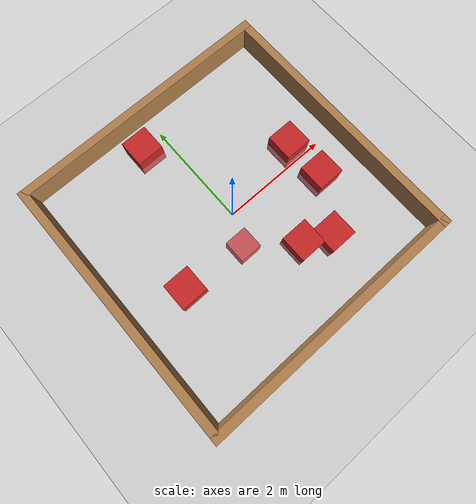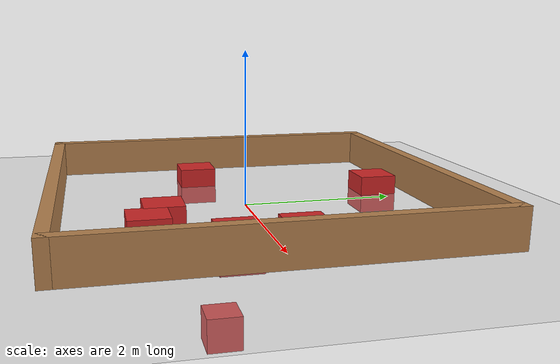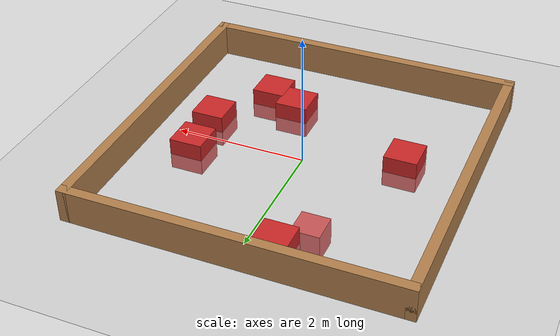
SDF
<sdf version="1.7">
 <world name="default">
  <model name="ground_plane">
   <static>1</static>
   <link name="link">
    <collision name="collision">
     <geometry><plane><normal>0 0 1</normal><size>100 100</size></plane></geometry>
     <surface><friction><ode><mu>100</mu><mu2>50</mu2></ode></friction></surface>
    </collision>
    <visual name="visual">
     <cast_shadows>0</cast_shadows>
     <geometry><plane><normal>0 0 1</normal><size>100 100</size></plane></geometry>
     <material>
      <script><uri>file://media/materials/scripts/gazebo.material</uri><name>Gazebo/Grey</name></script>
     </material>
    </visual>
   </link>
  </model>
  <light name="sun" type="directional">
   <pose>0 0 10 0 -0 0</pose>
   <diffuse>0.8 0.8 0.8 1</diffuse>
   <specular>0.2 0.2 0.2 1</specular>
   <attenuation>
    <range>1000</range>
    <constant>0.9</constant>
    <linear>0.01</linear>
    <quadratic>0.001</quadratic>
   </attenuation>
   <direction>-0.5 0.1 -0.9</direction>
   <spot><inner_angle>0</inner_angle><outer_angle>0</outer_angle><falloff>0</falloff></spot>
  </light>
  <scene><shadows>0</shadows><ambient>0.4 0.4 0.4 1</ambient><background>0.7 0.7 0.7 1</background></scene>
  <physics type="ode">
   <real_time_update_rate>1000</real_time_update_rate>
   <max_step_size>0.001</max_step_size>
   <real_time_factor>1</real_time_factor>
   <ode>
    <solver>
     <type>quick</type>
     <iters>150</iters>
     <precon_iters>0</precon_iters>
     <sor>1.4</sor>
     <use_dynamic_moi_rescaling>1</use_dynamic_moi_rescaling>
    </solver>
    <constraints>
     <cfm>1e-05</cfm>
     <erp>0.2</erp>
     <contact_max_correcting_vel>2000</contact_max_correcting_vel>
     <contact_surface_layer>0.01</contact_surface_layer>
    </constraints>
   </ode>
  </physics>
  <model name="turtlebot3_dqn_world">
   <static>1</static>
   <frame name="turtlebot3_square::__model__" attached_to="turtlebot3_square::Wall_1">
    <pose relative_to="__model__">0 0 0 0 -0 0</pose>
   </frame>
   <link name="turtlebot3_square::Wall_1">
    <collision name="Wall_1_Collision">
     <geometry><box><size>5 0.15 0.5</size></box></geometry>
     <pose>0 0 0.25 0 -0 0</pose>
    </collision>
    <visual name="Wall_1_Visual">
     <pose>0 0 0.25 0 -0 0</pose>
     <geometry><box><size>5 0.15 0.5</size></box></geometry>
     <material>
      <script><uri>file://media/materials/scripts/gazebo.material</uri><name>Gazebo/Wood</name></script>
      <ambient>1 1 1 1</ambient>
     </material>
    </visual>
    <pose relative_to="turtlebot3_square::__model__">-2.425 0 0 0 -0 1.5708</pose>
   </link>
   <link name="turtlebot3_square::Wall_2">
    <collision name="Wall_2_Collision">
     <geometry><box><size>5 0.15 0.5</size></box></geometry>
     <pose>0 0 0.25 0 -0 0</pose>
    </collision>
    <visual name="Wall_2_Visual">
     <pose>0 0 0.25 0 -0 0</pose>
     <geometry><box><size>5 0.15 0.5</size></box></geometry>
     <material>
      <script><uri>file://media/materials/scripts/gazebo.material</uri><name>Gazebo/Wood</name></script>
      <ambient>1 1 1 1</ambient>
     </material>
    </visual>
    <pose relative_to="turtlebot3_square::__model__">0 2.425 0 0 -0 0</pose>
   </link>
   <link name="turtlebot3_square::Wall_3">
    <collision name="Wall_3_Collision">
     <geometry><box><size>5 0.15 0.5</size></box></geometry>
     <pose>0 0 0.25 0 -0 0</pose>
    </collision>
    <visual name="Wall_3_Visual">
     <pose>0 0 0.25 0 -0 0</pose>
     <geometry><box><size>5 0.15 0.5</size></box></geometry>
     <material>
      <script><uri>file://media/materials/scripts/gazebo.material</uri><name>Gazebo/Wood</name></script>
      <ambient>1 1 1 1</ambient>
     </material>
    </visual>
    <pose relative_to="turtlebot3_square::__model__">2.425 0 0 0 0 -1.5708</pose>
   </link>
   <link name="turtlebot3_square::Wall_4">
    <collision name="Wall_4_Collision">
     <geometry><box><size>5 0.15 0.5</size></box></geometry>
     <pose>0 0 0.25 0 -0 0</pose>
    </collision>
    <visual name="Wall_4_Visual">
     <pose>0 0 0.25 0 -0 0</pose>
     <geometry><box><size>5 0.15 0.5</size></box></geometry>
     <material>
      <script><uri>file://media/materials/scripts/gazebo.material</uri><name>Gazebo/Wood</name></script>
      <ambient>1 1 1 1</ambient>
     </material>
    </visual>
    <pose relative_to="turtlebot3_square::__model__">0 -2.425 0 0 -0 3.14159</pose>
   </link>
   <static>1</static>
  </model>
  <model name="red_cube_1">
   <static>1</static>
   <pose>-1.40664 -0.448155 0 0 -0 0</pose>
   <link name="link">
    <collision name="collision"><geometry><box><size>0.5 0.5 0.5</size></box></geometry></collision>
    <visual name="visual">
     <geometry><box><size>0.5 0.5 0.5</size></box></geometry>
     <material>
      <script><name>Gazebo/Red</name><uri>file://media/materials/scripts/gazebo.material</uri></script>
     </material>
    </visual>
   </link>
  </model>
  <model name="red_cube_2">
   <static>1</static>
   <pose>1.64421 -0.448155 0 0 -0 0</pose>
   <link name="link">
    <collision name="collision"><geometry><box><size>0.5 0.5 0.5</size></box></geometry></collision>
    <visual name="visual">
     <geometry><box><size>0.5 0.5 0.5</size></box></geometry>
     <material>
      <script><name>Gazebo/Red</name><uri>file://media/materials/scripts/gazebo.material</uri></script>
     </material>
    </visual>
   </link>
  </model>
  <model name="red_cube_3">
   <static>1</static>
   <pose>1.04421 -1.3641 0 0 -0 0</pose>
   <link name="link">
    <collision name="collision"><geometry><box><size>0.5 0.5 0.5</size></box></geometry></collision>
    <visual name="visual">
     <geometry><box><size>0.5 0.5 0.5</size></box></geometry>
     <material>
      <script><name>Gazebo/Red</name><uri>file://media/materials/scripts/gazebo.material</uri></script>
     </material>
    </visual>
   </link>
  </model>
  <model name="red_cube_4">
   <static>1</static>
   <pose>0.56634 -1.14445 0 0 -0 0</pose>
   <link name="link">
    <collision name="collision"><geometry><box><size>0.5 0.5 0.5</size></box></geometry></collision>
    <visual name="visual">
     <geometry><box><size>0.5 0.5 0.5</size></box></geometry>
     <material>
      <script><name>Gazebo/Red</name><uri>file://media/materials/scripts/gazebo.material</uri></script>
     </material>
    </visual>
   </link>
  </model>
  <model name="red_cube_5">
   <static>1</static>
   <pose>-0.40664 1.93257 0 0 -0 0</pose>
   <link name="link">
    <collision name="collision"><geometry><box><size>0.5 0.5 0.5</size></box></geometry></collision>
    <visual name="visual">
     <geometry><box><size>0.5 0.5 0.5</size></box></geometry>
     <material>
      <script><name>Gazebo/Red</name><uri>file://media/materials/scripts/gazebo.material</uri></script>
     </material>
    </visual>
   </link>
  </model>
  <model name="red_cube_6">
   <static>1</static>
   <pose>1.60664 0.3257 0 0 -0 0</pose>
   <link name="link">
    <collision name="collision"><geometry><box><size>0.5 0.5 0.5</size></box></geometry></collision>
    <visual name="visual">
     <geometry><box><size>0.5 0.5 0.5</size></box></geometry>
     <material>
      <script><name>Gazebo/Red</name><uri>file://media/materials/scripts/gazebo.material</uri></script>
     </material>
    </visual>
   </link>
  </model>
  <model name="red_cube_7">
   <static>1</static>
   <pose>0 -0.33257 -1.7257 0 -0 0</pose>
   <link name="link">
    <collision name="collision"><geometry><box><size>0.5 0.5 0.5</size></box></geometry></collision>
    <visual name="visual">
     <geometry><box><size>0.5 0.5 0.5</size></box></geometry>
     <material>
      <script><name>Gazebo/Red</name><uri>file://media/materials/scripts/gazebo.material</uri></script>
     </material>
    </visual>
   </link>
  </model>
  <gravity>0 0 -9.8</gravity>
  <magnetic_field>6e-06 2.3e-05 -4.2e-05</magnetic_field>
  <atmosphere type="adiabatic"/>
  <audio><device>default</device></audio>
  <spherical_coordinates>
   <surface_model>EARTH_WGS84</surface_model>
   <latitude_deg>0</latitude_deg>
   <longitude_deg>0</longitude_deg>
   <elevation>0</elevation>
   <heading_deg>0</heading_deg>
  </spherical_coordinates>
 </world>
</sdf>
